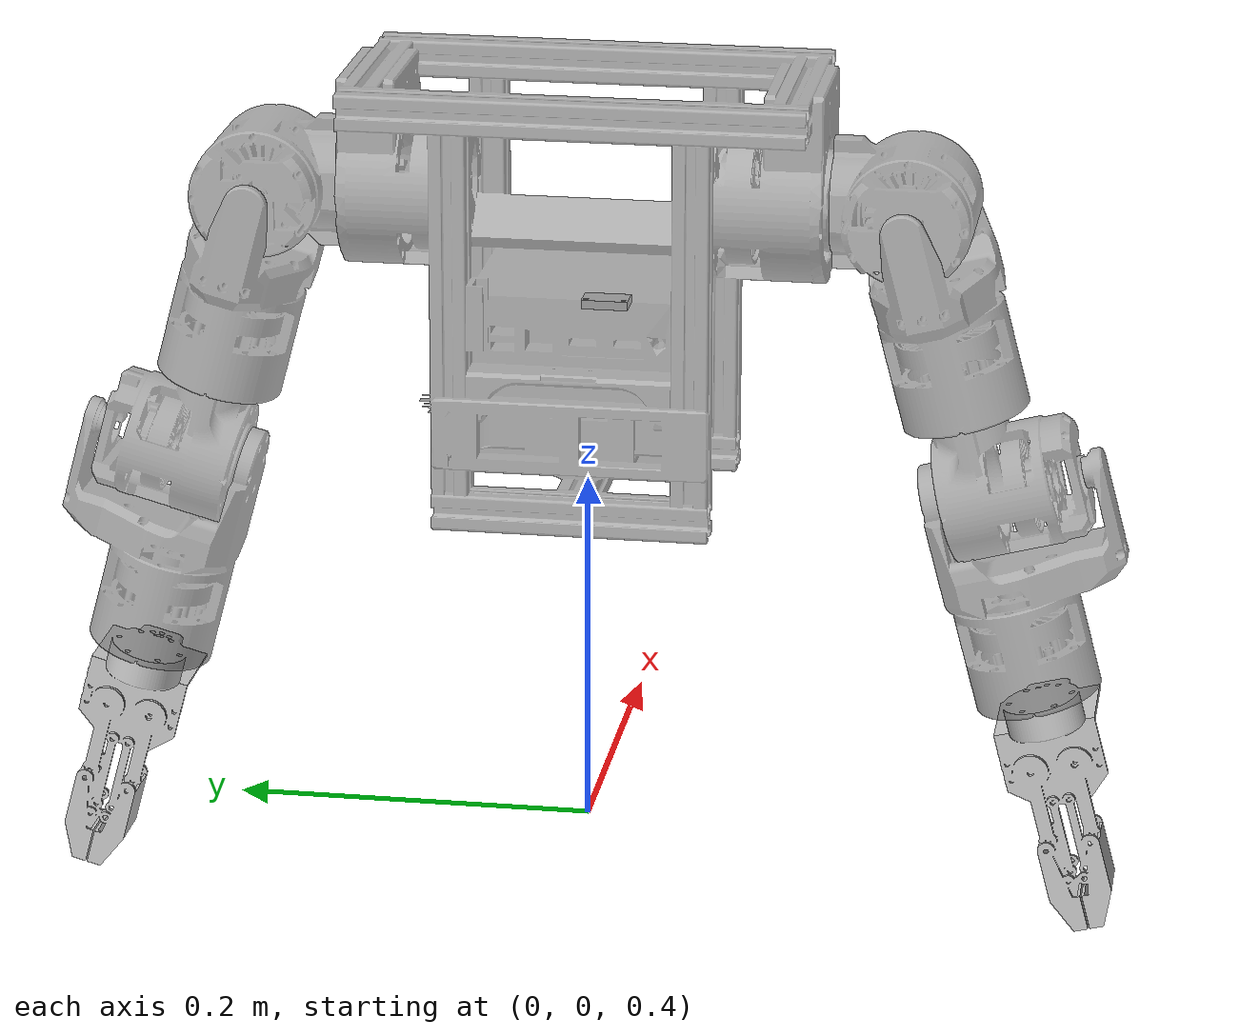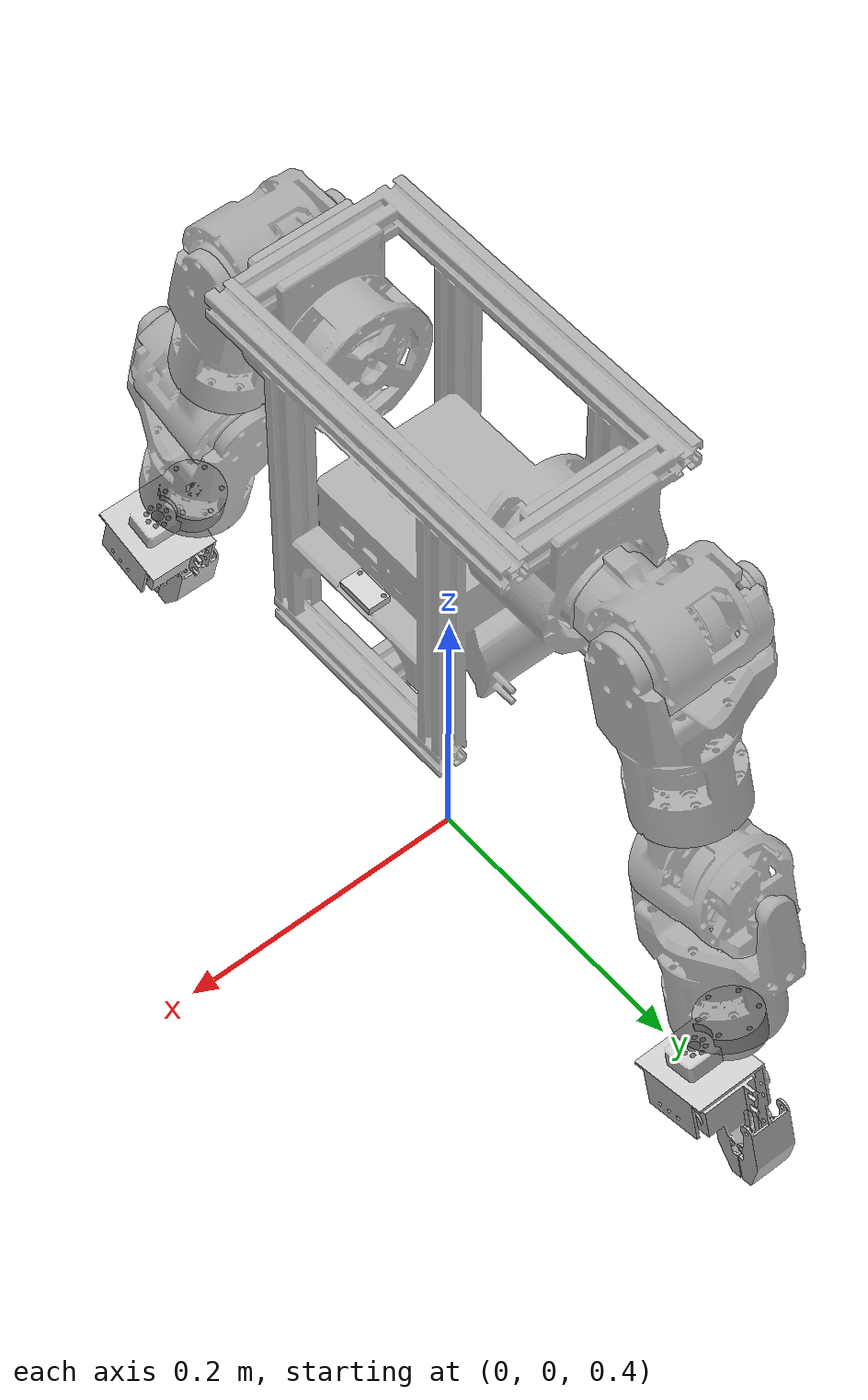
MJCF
<?xml version="1.0" ?>
<!-- Generated using onshape-to-robot -->
<!-- Onshape document_id: fc6443b1d89dcba950e85b60 -->
<!-- Modified: Torso and arms only (legs removed) -->
<mujoco model="berkeley-humanoid-lite-torso">
  <compiler angle="radian" meshdir="../assets" autolimits="true"/>
  <default>
    <default class="berkeley-humanoid-lite">
      <joint frictionloss="0.1" armature="0.005"/>
      <position kp="50" dampratio="1"/>
      <default class="visual">
        <geom type="mesh" contype="0" conaffinity="0" group="2"/>
      </default>
      <default class="collision">
        <geom group="3"/>
      </default>
    </default>
  </default>
  <worldbody>
    <!-- Link base -->
    <body name="base" pos="0 0 0" quat="1 0 0 0" childclass="berkeley-humanoid-lite">
      <freejoint name="base_freejoint"/>
      <inertial pos="-0.0030965 0.000264765 0.675059" mass="4.44401" fullinertia="0.0667167 0.0447686 0.0318661 1.21502e-06 -0.00131643 2.88151e-05"/>
      <!-- Part base_parts -->
      <geom class="collision" pos="-6.93889e-18 7.53521e-18 0.71" quat="0.707107 -2.07306e-15 1.88738e-15 -0.707107" type="box" size="0.075 0.07 0.115"/>
      <geom type="mesh" class="visual" pos="-0.0030965 0.000264765 0.675059" quat="1 0 0 0" mesh="base_visual_no_hip" material="base_visual_material"/>
      <!-- Link imu_2 -->
      <body name="imu_2" pos="0.061722 -5.97549e-17 0.68" quat="1 -0 5.77316e-15 -6.03078e-16">
        <!-- Joint from base to imu_2 -->
        <!-- Joint is "fixed", skipping it -->
        <inertial pos="3.00866e-18 9.72026e-19 0.0025" mass="0.00197704" fullinertia="1.11441e-07 4.06118e-08 1.43815e-07 -1.67651e-38 0 1.10203e-39"/>
        <!-- Part imu_2_parts -->
        <geom type="mesh" class="visual" pos="0 9.72026e-19 0.0025" quat="1 -0 -5.44009e-15 6.03078e-16" mesh="imu_2_visual" material="imu_2_visual_material"/>
        <!-- Frame imu -->
        <site group="3" name="imu" pos="0 -6.33816e-19 0.005" quat="1 0 0 0"/>
      </body>
      <!-- Link arm_left_shoulder_pitch -->
      <body name="arm_left_shoulder_pitch" pos="5.0759e-15 0.133 0.764028" quat="0.707107 -0.707107 4.44089e-15 4.89969e-15">
        <!-- Joint from base to arm_left_shoulder_pitch -->
        <joint axis="0 0 1" name="arm_left_shoulder_pitch_joint" type="hinge" range="-1.5707963267948983 0.7853981633974465"/>
        <inertial pos="-0.00661228 -8.80749e-05 0.0396144" mass="0.342876" fullinertia="0.000218285 0.000260325 0.00022463 -1.17021e-06 1.05191e-05 -4.52438e-07"/>
        <!-- Part arm_left_shoulder_pitch_parts -->
        <geom type="mesh" class="visual" pos="-0.00661228 -8.80749e-05 0.0396144" quat="0.707107 0.707107 -4.44089e-15 -4.89969e-15" mesh="arm_left_shoulder_pitch_visual" material="arm_left_shoulder_pitch_visual_material"/>
        <!-- Link arm_left_shoulder_roll -->
        <body name="arm_left_shoulder_roll" pos="0.0255 -8.88178e-16 0.043" quat="0.701057 0.092296 0.701057 0.092296">
          <!-- Joint from arm_left_shoulder_pitch to arm_left_shoulder_roll -->
          <joint axis="0 0 1" name="arm_left_shoulder_roll_joint" type="hinge" range="-0.26179938779914025 1.3089969389957563"/>
          <inertial pos="-4.00762e-05 0.0737019 -0.0277329" mass="0.443945" fullinertia="0.000698118 0.000365437 0.000568315 -4.07105e-07 -1.31045e-07 -1.56428e-05"/>
          <!-- Part arm_left_shoulder_roll_parts -->
          <geom type="mesh" class="visual" pos="-4.00762e-05 0.0737019 -0.0277329" quat="0.560986 0.430459 -0.560986 0.430459" mesh="arm_left_shoulder_roll_visual" material="arm_left_shoulder_roll_visual_material"/>
          <!-- Link arm_left_shoulder_yaw -->
          <body name="arm_left_shoulder_yaw" pos="2.55351e-14 0.123 -0.0255" quat="0.707107 -0.707107 2.05835e-13 2.14573e-13">
            <!-- Joint from arm_left_shoulder_roll to arm_left_shoulder_yaw -->
            <joint axis="0 0 1" name="arm_left_shoulder_yaw_joint" type="hinge" range="-0.7853981633969989 0.7853981633978977"/>
            <inertial pos="-0.00781722 -9.17114e-05 0.0409759" mass="0.329199" fullinertia="0.000196136 0.000241556 0.000214842 -1.164e-06 8.20811e-06 -4.93374e-07"/>
            <!-- Part arm_left_shoulder_yaw_parts -->
            <geom class="collision" pos="4.84682e-15 -4.92981e-15 -0.035" quat="6.90541e-14 -5.50948e-15 1 -7.03894e-14" type="cylinder" size="0.04 0.075"/>
            <geom type="mesh" class="visual" pos="-0.00781722 -9.17114e-05 0.0409759" quat="0.092296 0.701057 -0.701057 -0.092296" mesh="arm_left_shoulder_yaw_visual" material="arm_left_shoulder_yaw_visual_material"/>
            <!-- Link arm_left_elbow_pitch -->
            <body name="arm_left_elbow_pitch" pos="0.0245 1.98644e-15 0.043" quat="0.5 0.5 0.5 0.5">
              <!-- Joint from arm_left_shoulder_yaw to arm_left_elbow_pitch -->
              <joint axis="0 0 1" name="arm_left_elbow_pitch_joint" type="hinge" range="-4.4941828036826337e-13 1.5707963267944471"/>
              <inertial pos="-4.00762e-05 0.0737019 -0.0277329" mass="0.443945" fullinertia="0.000698118 0.000365437 0.000568315 -4.07105e-07 -1.31045e-07 -1.56428e-05"/>
              <!-- Part arm_left_elbow_pitch_parts -->
              <geom type="mesh" class="visual" pos="-4.00762e-05 0.0737019 -0.0277329" quat="1.07197e-13 2.03769e-13 0.793353 -0.608761" mesh="arm_left_elbow_pitch_visual" material="arm_left_elbow_pitch_visual_material"/>
              <!-- Link arm_left_elbow_roll -->
              <body name="arm_left_elbow_roll" pos="-2.78536e-14 0.123 -0.0255" quat="0.707107 -0.707107 4.34097e-14 1.78266e-13">
                <!-- Joint from arm_left_elbow_pitch to arm_left_elbow_roll -->
                <joint axis="0 0 1" name="arm_left_elbow_roll_joint" type="hinge" range="-0.7853981633974731 0.7853981633974234"/>
                <inertial pos="-6.0299e-19 -1.64296e-17 0.005" mass="0.000826239" fullinertia="1.20493e-08 1.20493e-08 1.0328e-08 3.60416e-36 9.26493e-38 -1.64865e-25"/>
                <!-- Part arm_left_elbow_roll_parts -->
                <geom class="collision" pos="-6.74047e-19 -7.68244e-18 -0.01" quat="0 1 0 0" type="cylinder" size="0.03 0.06"/>
                <geom type="mesh" class="visual" pos="-6.0299e-19 0 0.005" quat="1.42292e-13 -3.87806e-13 -0.991445 -0.130526" mesh="arm_left_elbow_roll_visual" material="arm_left_elbow_roll_visual_material"/>
                <!-- Link arm_left_hand_link -->
                <body name="arm_left_hand_link" pos="-2.68213e-29 0 -5.55112e-17" quat="1.36181e-15 0.707107 -0.707107 -3.70012e-15">
                  <!-- Joint from arm_left_elbow_roll to arm_left_hand_link -->
                  <!-- Joint is "fixed", skipping it -->
                  <inertial pos="-0.00248666 0.0134979 -0.0541316" mass="0.291741" fullinertia="0.000556491 0.000494025 0.000161723 3.82363e-06 -2.67254e-06 -0.000102102"/>
                  <!-- Part arm_left_hand_link_parts -->
                  <geom type="mesh" class="visual" pos="-0.00248666 0.0134979 -0.0541316" quat="0.701057 -0.092296 -0.092296 0.701057" mesh="arm_left_hand_link_visual" material="arm_left_hand_link_visual_material"/>
                </body>
              </body>
            </body>
          </body>
        </body>
      </body>
      <!-- Link arm_right_shoulder_pitch -->
      <body name="arm_right_shoulder_pitch" pos="1.19187e-16 -0.133 0.764028" quat="2.71137e-15 4.60842e-15 -0.707107 0.707107">
        <!-- Joint from base to arm_right_shoulder_pitch -->
        <joint axis="0 0 1" name="arm_right_shoulder_pitch_joint" type="hinge" range="-0.7853981633975158 1.570796326794829"/>
        <inertial pos="0.00661228 -1.57066e-05 0.0397088" mass="0.342876" fullinertia="0.000218503 0.000260541 0.000224632 2.55599e-07 -1.17928e-05 5.72405e-07"/>
        <!-- Part arm_right_shoulder_pitch_parts -->
        <geom type="mesh" class="visual" pos="0.00661228 -1.57066e-05 0.0397088" quat="2.6975e-15 -4.59801e-15 0.707107 -0.707107" mesh="arm_right_shoulder_pitch_visual" material="arm_right_shoulder_pitch_visual_material"/>
        <!-- Link arm_right_shoulder_roll -->
        <body name="arm_right_shoulder_roll" pos="-0.0255 3.10862e-15 0.043" quat="0.701057 0.092296 -0.701057 -0.092296">
          <!-- Joint from arm_right_shoulder_pitch to arm_right_shoulder_roll -->
          <joint axis="0 0 1" name="arm_right_shoulder_roll_joint" type="hinge" range="-1.308996938995632 0.2617993877992646"/>
          <inertial pos="-4.00762e-05 0.0737019 -0.0277329" mass="0.443945" fullinertia="0.000698118 0.000365437 0.000568315 -4.07105e-07 -1.31045e-07 -1.56428e-05"/>
          <!-- Part arm_right_shoulder_roll_parts -->
          <geom type="mesh" class="visual" pos="-4.00762e-05 0.0737019 -0.0277329" quat="0.430459 0.560986 -0.430459 0.560986" mesh="arm_right_shoulder_roll_visual" material="arm_right_shoulder_roll_visual_material"/>
          <!-- Link arm_right_shoulder_yaw -->
          <body name="arm_right_shoulder_yaw" pos="9.4369e-15 0.123 -0.0255" quat="1.95469e-14 -1.01469e-13 -0.707107 -0.707107">
            <!-- Joint from arm_right_shoulder_roll to arm_right_shoulder_yaw -->
            <joint axis="0 0 1" name="arm_right_shoulder_yaw_joint" type="hinge" range="-0.78539816339745 0.7853981633974465"/>
            <inertial pos="-0.00781722 -1.63693e-05 0.0404875" mass="0.329199" fullinertia="0.000195409 0.000240827 0.000214844 -2.54474e-07 1.84257e-06 -5.40945e-07"/>
            <!-- Part arm_right_shoulder_yaw_parts -->
            <geom class="collision" pos="-1.58554e-15 4.04401e-16 -0.035" quat="5.76054e-15 -1 -1.69636e-14 2.26551e-14" type="cylinder" size="0.04 0.075"/>
            <geom type="mesh" class="visual" pos="-0.00781722 -1.63693e-05 0.0404875" quat="0.092296 -0.701057 -0.701057 0.092296" mesh="arm_right_shoulder_yaw_visual" material="arm_right_shoulder_yaw_visual_material"/>
            <!-- Link arm_right_elbow_pitch -->
            <body name="arm_right_elbow_pitch" pos="0.0245 6.93211e-15 0.043" quat="0.5 0.5 0.5 0.5">
              <!-- Joint from arm_right_shoulder_yaw to arm_right_elbow_pitch -->
              <joint axis="0 0 1" name="arm_right_elbow_pitch_joint" type="hinge" range="-1.5707963267948966 -0.0"/>
              <inertial pos="-4.00762e-05 0.0737019 -0.0277329" mass="0.443945" fullinertia="0.000698118 0.000365437 0.000568315 -4.07105e-07 -1.31045e-07 -1.56428e-05"/>
              <!-- Part arm_right_elbow_pitch_parts -->
              <geom type="mesh" class="visual" pos="-4.00762e-05 0.0737019 -0.0277329" quat="0.608761 0.793353 -5.70655e-14 2.24372e-14" mesh="arm_right_elbow_pitch_visual" material="arm_right_elbow_pitch_visual_material"/>
              <!-- Link arm_right_elbow_roll -->
              <body name="arm_right_elbow_roll" pos="2.87116e-14 0.123 -0.0255" quat="1.88738e-15 4.70586e-15 -0.707107 -0.707107">
                <!-- Joint from arm_right_elbow_pitch to arm_right_elbow_roll -->
                <joint axis="0 0 1" name="arm_right_elbow_roll_joint" type="hinge" range="-0.7853981633974625 0.7853981633974341"/>
                <inertial pos="-6.0299e-19 -1.89849e-17 0.005" mass="0.000826239" fullinertia="1.20493e-08 1.20493e-08 1.0328e-08 -1.40849e-37 -4.81133e-39 6.41982e-25"/>
                <!-- Part arm_right_elbow_roll_parts -->
                <geom class="collision" pos="-6.74047e-19 -2.90123e-17 -0.01" quat="0 1 0 0" type="cylinder" size="0.03 0.06"/>
                <geom type="mesh" class="visual" pos="-6.0299e-19 0 0.005" quat="2.93376e-14 5.49187e-14 0.991445 -0.130526" mesh="arm_right_elbow_roll_visual" material="arm_right_elbow_roll_visual_material"/>
                <!-- Link arm_right_hand_link -->
                <body name="arm_right_hand_link" pos="-6.74047e-19 5.55112e-17 0" quat="7.16041e-15 -0.707107 0.707107 7.3068e-15">
                  <!-- Joint from arm_right_elbow_roll to arm_right_hand_link -->
                  <!-- Joint is "fixed", skipping it -->
                  <inertial pos="-0.00248666 0.0134979 -0.0541316" mass="0.291741" fullinertia="0.000556491 0.000494025 0.000161723 3.82363e-06 -2.67254e-06 -0.000102102"/>
                  <!-- Part arm_right_hand_link_parts -->
                  <geom type="mesh" class="visual" pos="-0.00248666 0.0134979 -0.0541316" quat="0.701057 0.092296 0.092296 0.701057" mesh="arm_right_hand_link_visual" material="arm_right_hand_link_visual_material"/>
                </body>
              </body>
            </body>
          </body>
        </body>
      </body>
    </body>
  </worldbody>
  <asset>
    <mesh file="merged/arm_left_elbow_pitch_visual.stl"/>
    <mesh file="merged/arm_left_shoulder_roll_visual.stl"/>
    <mesh file="merged/arm_left_shoulder_pitch_visual.stl"/>
    <mesh file="merged/arm_right_elbow_pitch_visual.stl"/>
    <mesh file="merged/arm_right_shoulder_yaw_visual.stl"/>
    <mesh file="merged/arm_right_elbow_roll_visual.stl"/>
    <mesh file="merged/arm_right_hand_link_visual.stl"/>
    <mesh file="merged/base_visual_no_hip.stl"/>
    <mesh file="merged/arm_right_shoulder_roll_visual.stl"/>
    <mesh file="merged/arm_left_hand_link_visual.stl"/>
    <mesh file="merged/arm_left_elbow_roll_visual.stl"/>
    <mesh file="merged/arm_left_shoulder_yaw_visual.stl"/>
    <mesh file="merged/arm_right_shoulder_pitch_visual.stl"/>
    <mesh file="merged/imu_2_visual.stl"/>
    <material name="base_visual_material" rgba="0.618701 0.618701 0.618701 0.773376"/>
    <material name="imu_2_visual_material" rgba="0.8 0.8 0.8 1"/>
    <material name="arm_left_shoulder_pitch_visual_material" rgba="0.521528 0.521528 0.521528 0.65191"/>
    <material name="arm_left_shoulder_roll_visual_material" rgba="0.584926 0.584926 0.584926 0.731157"/>
    <material name="arm_left_shoulder_yaw_visual_material" rgba="0.509959 0.509959 0.509959 0.637449"/>
    <material name="arm_left_elbow_pitch_visual_material" rgba="0.584926 0.584926 0.584926 0.731157"/>
    <material name="arm_left_elbow_roll_visual_material" rgba="0.8 0.8 0.8 1"/>
    <material name="arm_left_hand_link_visual_material" rgba="0.8 0.8 0.8 1"/>
    <material name="arm_right_shoulder_pitch_visual_material" rgba="0.521528 0.521528 0.521528 0.65191"/>
    <material name="arm_right_shoulder_roll_visual_material" rgba="0.584926 0.584926 0.584926 0.731157"/>
    <material name="arm_right_shoulder_yaw_visual_material" rgba="0.509959 0.509959 0.509959 0.637449"/>
    <material name="arm_right_elbow_pitch_visual_material" rgba="0.584926 0.584926 0.584926 0.731157"/>
    <material name="arm_right_elbow_roll_visual_material" rgba="0.8 0.8 0.8 1"/>
    <material name="arm_right_hand_link_visual_material" rgba="0.8 0.8 0.8 1"/>
  </asset>
  <actuator>
    <motor class="berkeley-humanoid-lite" name="arm_left_shoulder_pitch_joint" joint="arm_left_shoulder_pitch_joint" forcerange="-20 20"/>
    <motor class="berkeley-humanoid-lite" name="arm_left_shoulder_roll_joint" joint="arm_left_shoulder_roll_joint" forcerange="-20 20"/>
    <motor class="berkeley-humanoid-lite" name="arm_left_shoulder_yaw_joint" joint="arm_left_shoulder_yaw_joint" forcerange="-20 20"/>
    <motor class="berkeley-humanoid-lite" name="arm_left_elbow_pitch_joint" joint="arm_left_elbow_pitch_joint" forcerange="-20 20"/>
    <motor class="berkeley-humanoid-lite" name="arm_left_elbow_roll_joint" joint="arm_left_elbow_roll_joint" forcerange="-20 20"/>
    <motor class="berkeley-humanoid-lite" name="arm_right_shoulder_pitch_joint" joint="arm_right_shoulder_pitch_joint" forcerange="-20 20"/>
    <motor class="berkeley-humanoid-lite" name="arm_right_shoulder_roll_joint" joint="arm_right_shoulder_roll_joint" forcerange="-20 20"/>
    <motor class="berkeley-humanoid-lite" name="arm_right_shoulder_yaw_joint" joint="arm_right_shoulder_yaw_joint" forcerange="-20 20"/>
    <motor class="berkeley-humanoid-lite" name="arm_right_elbow_pitch_joint" joint="arm_right_elbow_pitch_joint" forcerange="-20 20"/>
    <motor class="berkeley-humanoid-lite" name="arm_right_elbow_roll_joint" joint="arm_right_elbow_roll_joint" forcerange="-20 20"/>
  </actuator>

  <sensor>
    <jointpos name="arm_left_shoulder_pitch_pos"  joint="arm_left_shoulder_pitch_joint"/>
    <jointpos name="arm_left_shoulder_roll_pos"   joint="arm_left_shoulder_roll_joint"/>
    <jointpos name="arm_left_shoulder_yaw_pos"    joint="arm_left_shoulder_yaw_joint"/>
    <jointpos name="arm_left_elbow_pitch_pos"     joint="arm_left_elbow_pitch_joint"/>
    <jointpos name="arm_left_elbow_roll_pos"      joint="arm_left_elbow_roll_joint"/>
    <jointpos name="arm_right_shoulder_pitch_pos" joint="arm_right_shoulder_pitch_joint"/>
    <jointpos name="arm_right_shoulder_roll_pos"  joint="arm_right_shoulder_roll_joint"/>
    <jointpos name="arm_right_shoulder_yaw_pos"   joint="arm_right_shoulder_yaw_joint"/>
    <jointpos name="arm_right_elbow_pitch_pos"    joint="arm_right_elbow_pitch_joint"/>
    <jointpos name="arm_right_elbow_roll_pos"     joint="arm_right_elbow_roll_joint"/>

    <jointvel name="arm_left_shoulder_pitch_vel"  joint="arm_left_shoulder_pitch_joint"/>
    <jointvel name="arm_left_shoulder_roll_vel"   joint="arm_left_shoulder_roll_joint"/>
    <jointvel name="arm_left_shoulder_yaw_vel"    joint="arm_left_shoulder_yaw_joint"/>
    <jointvel name="arm_left_elbow_pitch_vel"     joint="arm_left_elbow_pitch_joint"/>
    <jointvel name="arm_left_elbow_roll_vel"      joint="arm_left_elbow_roll_joint"/>
    <jointvel name="arm_right_shoulder_pitch_vel" joint="arm_right_shoulder_pitch_joint"/>
    <jointvel name="arm_right_shoulder_roll_vel"  joint="arm_right_shoulder_roll_joint"/>
    <jointvel name="arm_right_shoulder_yaw_vel"   joint="arm_right_shoulder_yaw_joint"/>
    <jointvel name="arm_right_elbow_pitch_vel"    joint="arm_right_elbow_pitch_joint"/>
    <jointvel name="arm_right_elbow_roll_vel"     joint="arm_right_elbow_roll_joint"/>

    <jointactuatorfrc name="arm_left_shoulder_pitch_torque"   joint="arm_left_shoulder_pitch_joint"/>
    <jointactuatorfrc name="arm_left_shoulder_roll_torque"    joint="arm_left_shoulder_roll_joint"/>
    <jointactuatorfrc name="arm_left_shoulder_yaw_torque"     joint="arm_left_shoulder_yaw_joint"/>
    <jointactuatorfrc name="arm_left_elbow_pitch_torque"      joint="arm_left_elbow_pitch_joint"/>
    <jointactuatorfrc name="arm_left_elbow_roll_torque"       joint="arm_left_elbow_roll_joint"/>
    <jointactuatorfrc name="arm_right_shoulder_pitch_torque"  joint="arm_right_shoulder_pitch_joint"/>
    <jointactuatorfrc name="arm_right_shoulder_roll_torque"   joint="arm_right_shoulder_roll_joint"/>
    <jointactuatorfrc name="arm_right_shoulder_yaw_torque"    joint="arm_right_shoulder_yaw_joint"/>
    <jointactuatorfrc name="arm_right_elbow_pitch_torque"     joint="arm_right_elbow_pitch_joint"/>
    <jointactuatorfrc name="arm_right_elbow_roll_torque"      joint="arm_right_elbow_roll_joint"/>

    <framequat name="imu_quat" objtype="site" objname="imu" />
    <gyro name="imu_gyro" site="imu" />
    <accelerometer name="imu_acc" site="imu" />
    <framepos name="frame_pos" objtype="site" objname="imu" />
    <framelinvel name="frame_vel" objtype="site" objname="imu" />
  </sensor>
  <equality/>
</mujoco>
